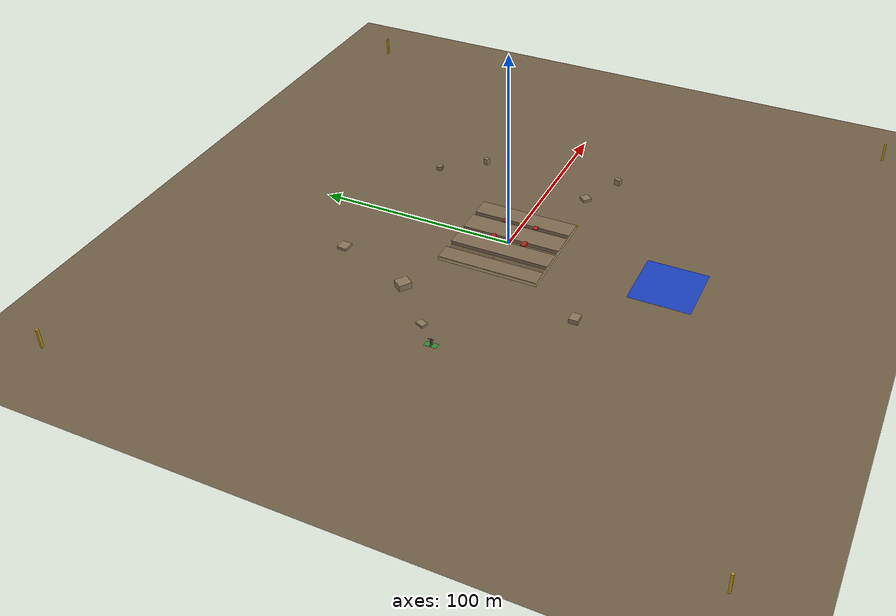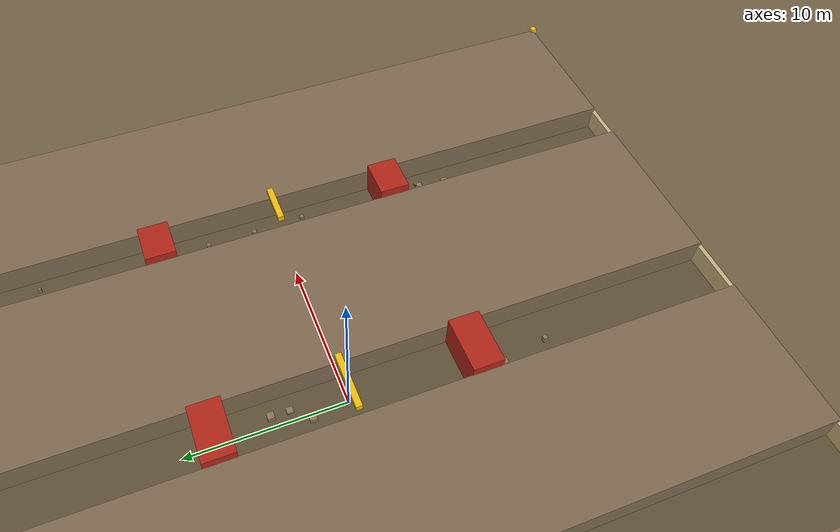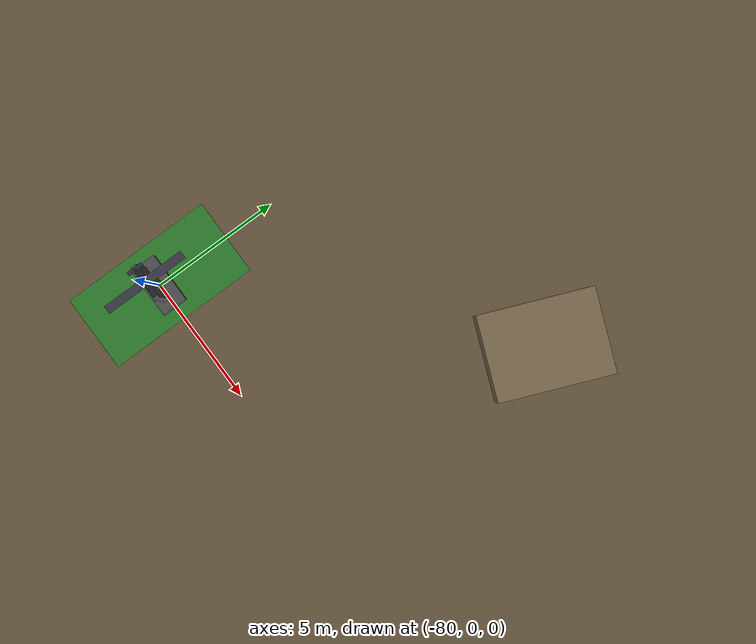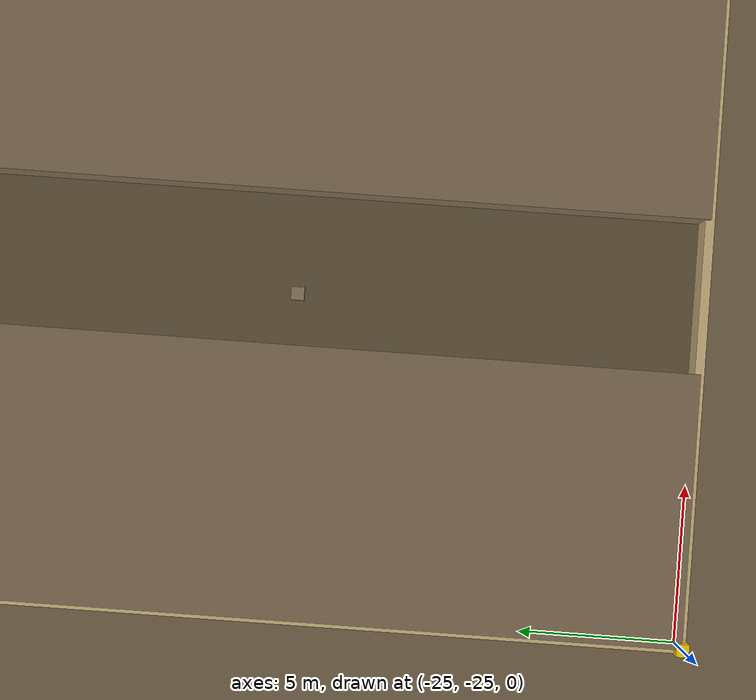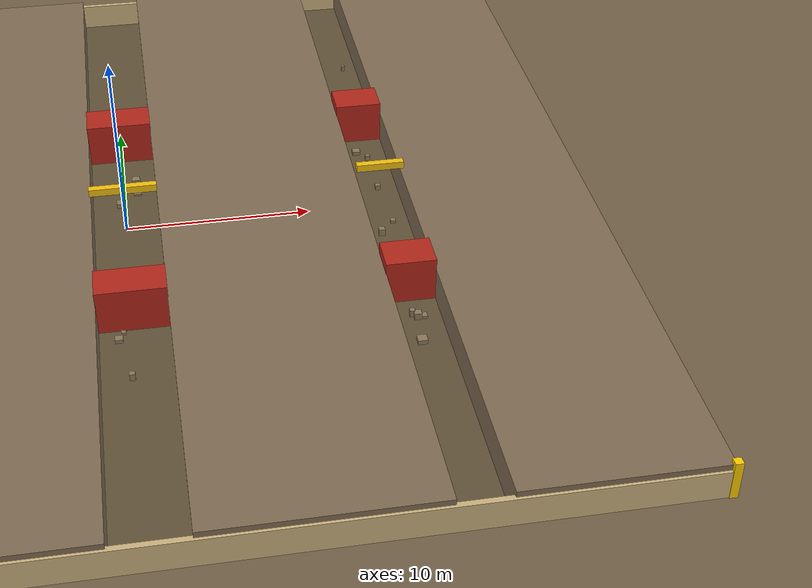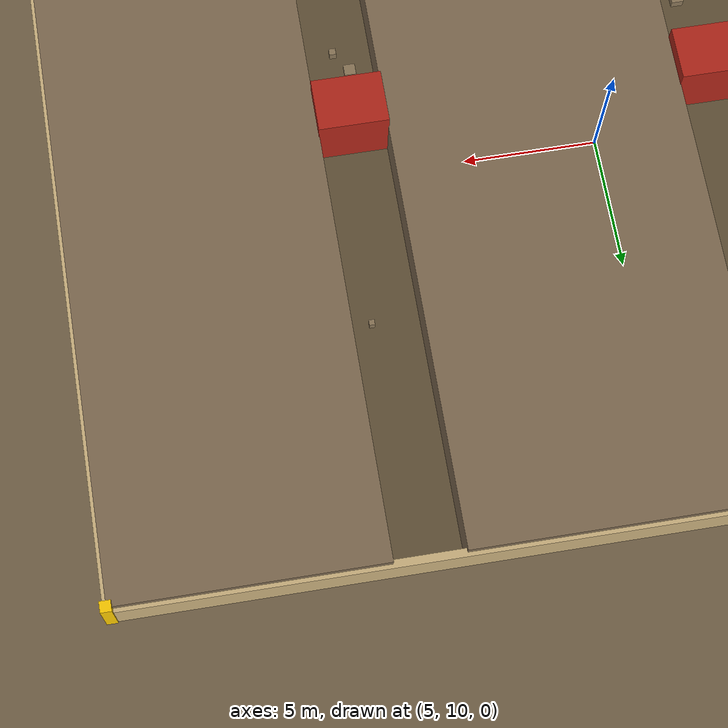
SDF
<?xml version="1.0"?>
<sdf version="1.6">
<world name="navitas_teknofest_2026">

  <physics type="ode">
    <real_time_update_rate>1000</real_time_update_rate>
    <max_step_size>0.001</max_step_size>
  </physics>

  <scene>
    <ambient>0.6 0.6 0.6 1</ambient>
    <background>0.53 0.81 0.98 1</background>
    <shadows>true</shadows>
    <sky>
      <clouds><speed>12</speed></clouds>
    </sky>
  </scene>

  <include>
    <uri>model://sun</uri>
  </include>

  <!-- Zemin düzlemi -->
  <model name="ground_plane">
    <static>true</static>
    <link name="link">
      <collision name="col">
        <geometry><plane><normal>0 0 1</normal><size>500 500</size></plane></geometry>
      </collision>
      <visual name="vis">
        <geometry><plane><normal>0 0 1</normal><size>500 500</size></plane></geometry>
        <material>
          <ambient>0.45 0.38 0.28 1</ambient>
          <diffuse>0.45 0.38 0.28 1</diffuse>
        </material>
      </visual>
    </link>
  </model>

  <!-- Kamera başlangıç konumu (Gazebo GUI) -->
  <gui fullscreen="0">
    <camera name="user_camera">
      <pose>0 -80 60 0 0.8 1.5708</pose>
      <view_controller>orbit</view_controller>
    </camera>
  </gui>

  <!-- === ALAN İŞARETLERİ === -->

  <model name="htab_ground">
    <static>true</static>
    <pose>0.000 0.000 0.002 0 0 0.0000</pose>
    <link name="link">
      <collision name="col">
        <geometry><box><size>50.000 50.000 0.010</size></box></geometry>
      </collision>
      <visual name="vis">
        <cast_shadows>false</cast_shadows>
        <geometry><box><size>50.000 50.000 0.010</size></box></geometry>
        <material>
          <ambient>0.380 0.320 0.220 1.000</ambient>
          <diffuse>0.380 0.320 0.220 1.000</diffuse>
          <specular>0.1 0.1 0.1 1</specular>
        </material>
      </visual>
    </link>
  </model>

  <model name="inis_bolgesi">
    <static>true</static>
    <pose>0.000 -80.000 0.005 0 0 0.0000</pose>
    <link name="link">
      <collision name="col">
        <geometry><box><size>30.000 30.000 0.010</size></box></geometry>
      </collision>
      <visual name="vis">
        <cast_shadows>false</cast_shadows>
        <geometry><box><size>30.000 30.000 0.010</size></box></geometry>
        <material>
          <ambient>0.100 0.250 0.750 1.000</ambient>
          <diffuse>0.100 0.250 0.750 1.000</diffuse>
          <specular>0.1 0.1 0.1 1</specular>
        </material>
      </visual>
    </link>
  </model>

  <model name="hedef_H">
    <static>true</static>
    <pose>18.000 21.000 0.010 0 0 0.0000</pose>
    <link name="link">
      <collision name="col">
        <geometry><box><size>2.000 2.000 0.010</size></box></geometry>
      </collision>
      <visual name="vis">
        <cast_shadows>false</cast_shadows>
        <geometry><box><size>2.000 2.000 0.010</size></box></geometry>
        <material>
          <ambient>0.850 0.080 0.080 1.000</ambient>
          <diffuse>0.850 0.080 0.080 1.000</diffuse>
          <specular>0.1 0.1 0.1 1</specular>
        </material>
      </visual>
    </link>
  </model>

  <model name="h_left">
    <static>true</static>
    <pose>17.450 21.000 0.350 0 0 0.0000</pose>
    <link name="link">
      <collision name="col">
        <geometry><box><size>0.300 2.000 0.700</size></box></geometry>
      </collision>
      <visual name="vis">
        <cast_shadows>true</cast_shadows>
        <geometry><box><size>0.300 2.000 0.700</size></box></geometry>
        <material>
          <ambient>0.850 0.080 0.080 1.000</ambient>
          <diffuse>0.850 0.080 0.080 1.000</diffuse>
          <specular>0.1 0.1 0.1 1</specular>
        </material>
      </visual>
    </link>
  </model>

  <model name="h_right">
    <static>true</static>
    <pose>18.550 21.000 0.350 0 0 0.0000</pose>
    <link name="link">
      <collision name="col">
        <geometry><box><size>0.300 2.000 0.700</size></box></geometry>
      </collision>
      <visual name="vis">
        <cast_shadows>true</cast_shadows>
        <geometry><box><size>0.300 2.000 0.700</size></box></geometry>
        <material>
          <ambient>0.850 0.080 0.080 1.000</ambient>
          <diffuse>0.850 0.080 0.080 1.000</diffuse>
          <specular>0.1 0.1 0.1 1</specular>
        </material>
      </visual>
    </link>
  </model>

  <model name="h_center">
    <static>true</static>
    <pose>18.000 21.000 0.350 0 0 0.0000</pose>
    <link name="link">
      <collision name="col">
        <geometry><box><size>0.800 0.300 0.700</size></box></geometry>
      </collision>
      <visual name="vis">
        <cast_shadows>true</cast_shadows>
        <geometry><box><size>0.800 0.300 0.700</size></box></geometry>
        <material>
          <ambient>0.850 0.080 0.080 1.000</ambient>
          <diffuse>0.850 0.080 0.080 1.000</diffuse>
          <specular>0.1 0.1 0.1 1</specular>
        </material>
      </visual>
    </link>
  </model>

  <model name="ika_kb">
    <static>true</static>
    <pose>-22.000 -22.000 0.010 0 0 0.0000</pose>
    <link name="link">
      <collision name="col">
        <geometry><box><size>1.000 1.000 0.010</size></box></geometry>
      </collision>
      <visual name="vis">
        <cast_shadows>false</cast_shadows>
        <geometry><box><size>1.000 1.000 0.010</size></box></geometry>
        <material>
          <ambient>0.900 0.800 0.100 1.000</ambient>
          <diffuse>0.900 0.800 0.100 1.000</diffuse>
          <specular>0.1 0.1 0.1 1</specular>
        </material>
      </visual>
    </link>
  </model>

  <model name="launch_marker">
    <static>true</static>
    <pose>-80.000 0.000 0.005 0 0 0.0000</pose>
    <link name="link">
      <collision name="col">
        <geometry><box><size>3.000 6.000 0.010</size></box></geometry>
      </collision>
      <visual name="vis">
        <cast_shadows>false</cast_shadows>
        <geometry><box><size>3.000 6.000 0.010</size></box></geometry>
        <material>
          <ambient>0.200 0.550 0.200 1.000</ambient>
          <diffuse>0.200 0.550 0.200 1.000</diffuse>
          <specular>0.1 0.1 0.1 1</specular>
        </material>
      </visual>
    </link>
  </model>

  <model name="launch_post">
    <static>true</static>
    <pose>-80.000 0.000 1.500 0 0 0.0000</pose>
    <link name="link">
      <collision name="col">
        <geometry><box><size>0.300 0.300 3.000</size></box></geometry>
      </collision>
      <visual name="vis">
        <cast_shadows>true</cast_shadows>
        <geometry><box><size>0.300 0.300 3.000</size></box></geometry>
        <material>
          <ambient>0.200 0.550 0.200 1.000</ambient>
          <diffuse>0.200 0.550 0.200 1.000</diffuse>
          <specular>0.1 0.1 0.1 1</specular>
        </material>
      </visual>
    </link>
  </model>

  <model name="ub_corner_-150_-150">
    <static>true</static>
    <pose>-150.000 -150.000 5.000 0 0 0.0000</pose>
    <link name="link">
      <collision name="col">
        <geometry><box><size>1.000 1.000 10.000</size></box></geometry>
      </collision>
      <visual name="vis">
        <cast_shadows>true</cast_shadows>
        <geometry><box><size>1.000 1.000 10.000</size></box></geometry>
        <material>
          <ambient>0.850 0.650 0.100 1.000</ambient>
          <diffuse>0.850 0.650 0.100 1.000</diffuse>
          <specular>0.1 0.1 0.1 1</specular>
        </material>
      </visual>
    </link>
  </model>

  <model name="ub_corner_150_-150">
    <static>true</static>
    <pose>150.000 -150.000 5.000 0 0 0.0000</pose>
    <link name="link">
      <collision name="col">
        <geometry><box><size>1.000 1.000 10.000</size></box></geometry>
      </collision>
      <visual name="vis">
        <cast_shadows>true</cast_shadows>
        <geometry><box><size>1.000 1.000 10.000</size></box></geometry>
        <material>
          <ambient>0.850 0.650 0.100 1.000</ambient>
          <diffuse>0.850 0.650 0.100 1.000</diffuse>
          <specular>0.1 0.1 0.1 1</specular>
        </material>
      </visual>
    </link>
  </model>

  <model name="ub_corner_150_150">
    <static>true</static>
    <pose>150.000 150.000 5.000 0 0 0.0000</pose>
    <link name="link">
      <collision name="col">
        <geometry><box><size>1.000 1.000 10.000</size></box></geometry>
      </collision>
      <visual name="vis">
        <cast_shadows>true</cast_shadows>
        <geometry><box><size>1.000 1.000 10.000</size></box></geometry>
        <material>
          <ambient>0.850 0.650 0.100 1.000</ambient>
          <diffuse>0.850 0.650 0.100 1.000</diffuse>
          <specular>0.1 0.1 0.1 1</specular>
        </material>
      </visual>
    </link>
  </model>

  <model name="ub_corner_-150_150">
    <static>true</static>
    <pose>-150.000 150.000 5.000 0 0 0.0000</pose>
    <link name="link">
      <collision name="col">
        <geometry><box><size>1.000 1.000 10.000</size></box></geometry>
      </collision>
      <visual name="vis">
        <cast_shadows>true</cast_shadows>
        <geometry><box><size>1.000 1.000 10.000</size></box></geometry>
        <material>
          <ambient>0.850 0.650 0.100 1.000</ambient>
          <diffuse>0.850 0.650 0.100 1.000</diffuse>
          <specular>0.1 0.1 0.1 1</specular>
        </material>
      </visual>
    </link>
  </model>

  <model name="htab_corner_-25_-25">
    <static>true</static>
    <pose>-25.000 -25.000 1.000 0 0 0.0000</pose>
    <link name="link">
      <collision name="col">
        <geometry><box><size>0.400 0.400 2.000</size></box></geometry>
      </collision>
      <visual name="vis">
        <cast_shadows>true</cast_shadows>
        <geometry><box><size>0.400 0.400 2.000</size></box></geometry>
        <material>
          <ambient>1.000 0.800 0.000 1.000</ambient>
          <diffuse>1.000 0.800 0.000 1.000</diffuse>
          <specular>0.1 0.1 0.1 1</specular>
        </material>
      </visual>
    </link>
  </model>

  <model name="htab_corner_25_-25">
    <static>true</static>
    <pose>25.000 -25.000 1.000 0 0 0.0000</pose>
    <link name="link">
      <collision name="col">
        <geometry><box><size>0.400 0.400 2.000</size></box></geometry>
      </collision>
      <visual name="vis">
        <cast_shadows>true</cast_shadows>
        <geometry><box><size>0.400 0.400 2.000</size></box></geometry>
        <material>
          <ambient>1.000 0.800 0.000 1.000</ambient>
          <diffuse>1.000 0.800 0.000 1.000</diffuse>
          <specular>0.1 0.1 0.1 1</specular>
        </material>
      </visual>
    </link>
  </model>

  <model name="htab_corner_25_25">
    <static>true</static>
    <pose>25.000 25.000 1.000 0 0 0.0000</pose>
    <link name="link">
      <collision name="col">
        <geometry><box><size>0.400 0.400 2.000</size></box></geometry>
      </collision>
      <visual name="vis">
        <cast_shadows>true</cast_shadows>
        <geometry><box><size>0.400 0.400 2.000</size></box></geometry>
        <material>
          <ambient>1.000 0.800 0.000 1.000</ambient>
          <diffuse>1.000 0.800 0.000 1.000</diffuse>
          <specular>0.1 0.1 0.1 1</specular>
        </material>
      </visual>
    </link>
  </model>

  <model name="htab_corner_-25_25">
    <static>true</static>
    <pose>-25.000 25.000 1.000 0 0 0.0000</pose>
    <link name="link">
      <collision name="col">
        <geometry><box><size>0.400 0.400 2.000</size></box></geometry>
      </collision>
      <visual name="vis">
        <cast_shadows>true</cast_shadows>
        <geometry><box><size>0.400 0.400 2.000</size></box></geometry>
        <material>
          <ambient>1.000 0.800 0.000 1.000</ambient>
          <diffuse>1.000 0.800 0.000 1.000</diffuse>
          <specular>0.1 0.1 0.1 1</specular>
        </material>
      </visual>
    </link>
  </model>
  <!-- === KORİDOR YAPISI === -->

  <model name="wall_west_fill">
    <static>true</static>
    <pose>-20.712 0.000 0.900 0 0 0.0000</pose>
    <link name="link">
      <collision name="col">
        <geometry><box><size>8.575 50.000 1.800</size></box></geometry>
      </collision>
      <visual name="vis">
        <cast_shadows>true</cast_shadows>
        <geometry><box><size>8.575 50.000 1.800</size></box></geometry>
        <material>
          <ambient>0.500 0.420 0.320 1.000</ambient>
          <diffuse>0.500 0.420 0.320 1.000</diffuse>
          <specular>0.1 0.1 0.1 1</specular>
        </material>
      </visual>
    </link>
  </model>

  <model name="wall_kolay_orta">
    <static>true</static>
    <pose>-6.675 0.000 0.900 0 0 0.0000</pose>
    <link name="link">
      <collision name="col">
        <geometry><box><size>9.800 50.000 1.800</size></box></geometry>
      </collision>
      <visual name="vis">
        <cast_shadows>true</cast_shadows>
        <geometry><box><size>9.800 50.000 1.800</size></box></geometry>
        <material>
          <ambient>0.500 0.420 0.320 1.000</ambient>
          <diffuse>0.500 0.420 0.320 1.000</diffuse>
          <specular>0.1 0.1 0.1 1</specular>
        </material>
      </visual>
    </link>
  </model>

  <model name="wall_orta_zor">
    <static>true</static>
    <pose>7.250 0.000 0.900 0 0 0.0000</pose>
    <link name="link">
      <collision name="col">
        <geometry><box><size>10.950 50.000 1.800</size></box></geometry>
      </collision>
      <visual name="vis">
        <cast_shadows>true</cast_shadows>
        <geometry><box><size>10.950 50.000 1.800</size></box></geometry>
        <material>
          <ambient>0.500 0.420 0.320 1.000</ambient>
          <diffuse>0.500 0.420 0.320 1.000</diffuse>
          <specular>0.1 0.1 0.1 1</specular>
        </material>
      </visual>
    </link>
  </model>

  <model name="wall_east_fill">
    <static>true</static>
    <pose>20.137 0.000 0.900 0 0 0.0000</pose>
    <link name="link">
      <collision name="col">
        <geometry><box><size>9.725 50.000 1.800</size></box></geometry>
      </collision>
      <visual name="vis">
        <cast_shadows>true</cast_shadows>
        <geometry><box><size>9.725 50.000 1.800</size></box></geometry>
        <material>
          <ambient>0.500 0.420 0.320 1.000</ambient>
          <diffuse>0.500 0.420 0.320 1.000</diffuse>
          <specular>0.1 0.1 0.1 1</specular>
        </material>
      </visual>
    </link>
  </model>

  <model name="htab_north">
    <static>true</static>
    <pose>0.000 25.000 0.750 0 0 0.0000</pose>
    <link name="link">
      <collision name="col">
        <geometry><box><size>50.000 0.300 1.500</size></box></geometry>
      </collision>
      <visual name="vis">
        <cast_shadows>true</cast_shadows>
        <geometry><box><size>50.000 0.300 1.500</size></box></geometry>
        <material>
          <ambient>0.800 0.700 0.500 1.000</ambient>
          <diffuse>0.800 0.700 0.500 1.000</diffuse>
          <specular>0.1 0.1 0.1 1</specular>
        </material>
      </visual>
    </link>
  </model>

  <model name="htab_south">
    <static>true</static>
    <pose>0.000 -25.000 0.750 0 0 0.0000</pose>
    <link name="link">
      <collision name="col">
        <geometry><box><size>50.000 0.300 1.500</size></box></geometry>
      </collision>
      <visual name="vis">
        <cast_shadows>true</cast_shadows>
        <geometry><box><size>50.000 0.300 1.500</size></box></geometry>
        <material>
          <ambient>0.800 0.700 0.500 1.000</ambient>
          <diffuse>0.800 0.700 0.500 1.000</diffuse>
          <specular>0.1 0.1 0.1 1</specular>
        </material>
      </visual>
    </link>
  </model>

  <model name="htab_east">
    <static>true</static>
    <pose>25.000 0.000 0.750 0 0 0.0000</pose>
    <link name="link">
      <collision name="col">
        <geometry><box><size>0.300 50.000 1.500</size></box></geometry>
      </collision>
      <visual name="vis">
        <cast_shadows>true</cast_shadows>
        <geometry><box><size>0.300 50.000 1.500</size></box></geometry>
        <material>
          <ambient>0.800 0.700 0.500 1.000</ambient>
          <diffuse>0.800 0.700 0.500 1.000</diffuse>
          <specular>0.1 0.1 0.1 1</specular>
        </material>
      </visual>
    </link>
  </model>

  <model name="htab_west">
    <static>true</static>
    <pose>-25.000 0.000 0.750 0 0 0.0000</pose>
    <link name="link">
      <collision name="col">
        <geometry><box><size>0.300 50.000 1.500</size></box></geometry>
      </collision>
      <visual name="vis">
        <cast_shadows>true</cast_shadows>
        <geometry><box><size>0.300 50.000 1.500</size></box></geometry>
        <material>
          <ambient>0.800 0.700 0.500 1.000</ambient>
          <diffuse>0.800 0.700 0.500 1.000</diffuse>
          <specular>0.1 0.1 0.1 1</specular>
        </material>
      </visual>
    </link>
  </model>
  <!-- === KAPALI YOL BARİYERLERİ (açık: KOLAY) === -->

  <model name="barrier_orta_north">
    <static>true</static>
    <pose>0.000 8.000 1.200 0 0 0.0000</pose>
    <link name="link">
      <collision name="col">
        <geometry><box><size>3.600 2.000 2.400</size></box></geometry>
      </collision>
      <visual name="vis">
        <cast_shadows>true</cast_shadows>
        <geometry><box><size>3.600 2.000 2.400</size></box></geometry>
        <material>
          <ambient>0.700 0.150 0.100 1.000</ambient>
          <diffuse>0.700 0.150 0.100 1.000</diffuse>
          <specular>0.1 0.1 0.1 1</specular>
        </material>
      </visual>
    </link>
  </model>

  <model name="barrier_orta_south">
    <static>true</static>
    <pose>0.000 -8.000 1.200 0 0 0.0000</pose>
    <link name="link">
      <collision name="col">
        <geometry><box><size>3.600 2.000 2.400</size></box></geometry>
      </collision>
      <visual name="vis">
        <cast_shadows>true</cast_shadows>
        <geometry><box><size>3.600 2.000 2.400</size></box></geometry>
        <material>
          <ambient>0.700 0.150 0.100 1.000</ambient>
          <diffuse>0.700 0.150 0.100 1.000</diffuse>
          <specular>0.1 0.1 0.1 1</specular>
        </material>
      </visual>
    </link>
  </model>

  <model name="barrier_orta_sign">
    <static>true</static>
    <pose>0.000 0.000 2.600 0 0 0.0000</pose>
    <link name="link">
      <collision name="col">
        <geometry><box><size>3.600 0.400 0.400</size></box></geometry>
      </collision>
      <visual name="vis">
        <cast_shadows>true</cast_shadows>
        <geometry><box><size>3.600 0.400 0.400</size></box></geometry>
        <material>
          <ambient>0.950 0.750 0.050 1.000</ambient>
          <diffuse>0.950 0.750 0.050 1.000</diffuse>
          <specular>0.1 0.1 0.1 1</specular>
        </material>
      </visual>
    </link>
  </model>

  <model name="barrier_zor_north">
    <static>true</static>
    <pose>14.000 8.000 1.200 0 0 0.0000</pose>
    <link name="link">
      <collision name="col">
        <geometry><box><size>2.600 2.000 2.400</size></box></geometry>
      </collision>
      <visual name="vis">
        <cast_shadows>true</cast_shadows>
        <geometry><box><size>2.600 2.000 2.400</size></box></geometry>
        <material>
          <ambient>0.700 0.150 0.100 1.000</ambient>
          <diffuse>0.700 0.150 0.100 1.000</diffuse>
          <specular>0.1 0.1 0.1 1</specular>
        </material>
      </visual>
    </link>
  </model>

  <model name="barrier_zor_south">
    <static>true</static>
    <pose>14.000 -8.000 1.200 0 0 0.0000</pose>
    <link name="link">
      <collision name="col">
        <geometry><box><size>2.600 2.000 2.400</size></box></geometry>
      </collision>
      <visual name="vis">
        <cast_shadows>true</cast_shadows>
        <geometry><box><size>2.600 2.000 2.400</size></box></geometry>
        <material>
          <ambient>0.700 0.150 0.100 1.000</ambient>
          <diffuse>0.700 0.150 0.100 1.000</diffuse>
          <specular>0.1 0.1 0.1 1</specular>
        </material>
      </visual>
    </link>
  </model>

  <model name="barrier_zor_sign">
    <static>true</static>
    <pose>14.000 0.000 2.600 0 0 0.0000</pose>
    <link name="link">
      <collision name="col">
        <geometry><box><size>2.600 0.400 0.400</size></box></geometry>
      </collision>
      <visual name="vis">
        <cast_shadows>true</cast_shadows>
        <geometry><box><size>2.600 0.400 0.400</size></box></geometry>
        <material>
          <ambient>0.950 0.750 0.050 1.000</ambient>
          <diffuse>0.950 0.750 0.050 1.000</diffuse>
          <specular>0.1 0.1 0.1 1</specular>
        </material>
      </visual>
    </link>
  </model>
  <!-- === KORİDOR İÇİ KÜÇÜK ENGELLER === -->

  <model name="cor_debris_kolay_1">
    <static>true</static>
    <pose>-14.742 -12.179 0.152 0 0 0.0000</pose>
    <link name="link">
      <collision name="col">
        <geometry><box><size>0.421 0.421 0.303</size></box></geometry>
      </collision>
      <visual name="vis">
        <cast_shadows>true</cast_shadows>
        <geometry><box><size>0.421 0.421 0.303</size></box></geometry>
        <material>
          <ambient>0.550 0.470 0.350 1.000</ambient>
          <diffuse>0.550 0.470 0.350 1.000</diffuse>
          <specular>0.1 0.1 0.1 1</specular>
        </material>
      </visual>
    </link>
  </model>

  <model name="cor_debris_kolay_4">
    <static>true</static>
    <pose>-14.928 0.236 0.080 0 0 0.0000</pose>
    <link name="link">
      <collision name="col">
        <geometry><box><size>0.208 0.208 0.160</size></box></geometry>
      </collision>
      <visual name="vis">
        <cast_shadows>true</cast_shadows>
        <geometry><box><size>0.208 0.208 0.160</size></box></geometry>
        <material>
          <ambient>0.550 0.470 0.350 1.000</ambient>
          <diffuse>0.550 0.470 0.350 1.000</diffuse>
          <specular>0.1 0.1 0.1 1</specular>
        </material>
      </visual>
    </link>
  </model>

  <model name="cor_debris_kolay_5">
    <static>true</static>
    <pose>-13.505 1.977 0.138 0 0 0.0000</pose>
    <link name="link">
      <collision name="col">
        <geometry><box><size>0.266 0.266 0.277</size></box></geometry>
      </collision>
      <visual name="vis">
        <cast_shadows>true</cast_shadows>
        <geometry><box><size>0.266 0.266 0.277</size></box></geometry>
        <material>
          <ambient>0.550 0.470 0.350 1.000</ambient>
          <diffuse>0.550 0.470 0.350 1.000</diffuse>
          <specular>0.1 0.1 0.1 1</specular>
        </material>
      </visual>
    </link>
  </model>

  <model name="cor_debris_orta_1">
    <static>true</static>
    <pose>0.612 8.718 0.073 0 0 0.0000</pose>
    <link name="link">
      <collision name="col">
        <geometry><box><size>0.302 0.302 0.147</size></box></geometry>
      </collision>
      <visual name="vis">
        <cast_shadows>true</cast_shadows>
        <geometry><box><size>0.302 0.302 0.147</size></box></geometry>
        <material>
          <ambient>0.550 0.470 0.350 1.000</ambient>
          <diffuse>0.550 0.470 0.350 1.000</diffuse>
          <specular>0.1 0.1 0.1 1</specular>
        </material>
      </visual>
    </link>
  </model>

  <model name="cor_debris_orta_2">
    <static>true</static>
    <pose>0.914 -7.190 0.065 0 0 0.0000</pose>
    <link name="link">
      <collision name="col">
        <geometry><box><size>0.228 0.228 0.129</size></box></geometry>
      </collision>
      <visual name="vis">
        <cast_shadows>true</cast_shadows>
        <geometry><box><size>0.228 0.228 0.129</size></box></geometry>
        <material>
          <ambient>0.550 0.470 0.350 1.000</ambient>
          <diffuse>0.550 0.470 0.350 1.000</diffuse>
          <specular>0.1 0.1 0.1 1</specular>
        </material>
      </visual>
    </link>
  </model>

  <model name="cor_debris_orta_3">
    <static>true</static>
    <pose>0.695 4.564 0.159 0 0 0.0000</pose>
    <link name="link">
      <collision name="col">
        <geometry><box><size>0.442 0.442 0.319</size></box></geometry>
      </collision>
      <visual name="vis">
        <cast_shadows>true</cast_shadows>
        <geometry><box><size>0.442 0.442 0.319</size></box></geometry>
        <material>
          <ambient>0.550 0.470 0.350 1.000</ambient>
          <diffuse>0.550 0.470 0.350 1.000</diffuse>
          <specular>0.1 0.1 0.1 1</specular>
        </material>
      </visual>
    </link>
  </model>

  <model name="cor_debris_orta_5">
    <static>true</static>
    <pose>-0.243 2.290 0.143 0 0 0.0000</pose>
    <link name="link">
      <collision name="col">
        <geometry><box><size>0.449 0.449 0.286</size></box></geometry>
      </collision>
      <visual name="vis">
        <cast_shadows>true</cast_shadows>
        <geometry><box><size>0.449 0.449 0.286</size></box></geometry>
        <material>
          <ambient>0.550 0.470 0.350 1.000</ambient>
          <diffuse>0.550 0.470 0.350 1.000</diffuse>
          <specular>0.1 0.1 0.1 1</specular>
        </material>
      </visual>
    </link>
  </model>

  <model name="cor_debris_orta_6">
    <static>true</static>
    <pose>0.723 3.403 0.057 0 0 0.0000</pose>
    <link name="link">
      <collision name="col">
        <geometry><box><size>0.411 0.411 0.114</size></box></geometry>
      </collision>
      <visual name="vis">
        <cast_shadows>true</cast_shadows>
        <geometry><box><size>0.411 0.411 0.114</size></box></geometry>
        <material>
          <ambient>0.550 0.470 0.350 1.000</ambient>
          <diffuse>0.550 0.470 0.350 1.000</diffuse>
          <specular>0.1 0.1 0.1 1</specular>
        </material>
      </visual>
    </link>
  </model>

  <model name="cor_debris_orta_7">
    <static>true</static>
    <pose>-0.544 -9.267 0.085 0 0 0.0000</pose>
    <link name="link">
      <collision name="col">
        <geometry><box><size>0.224 0.224 0.170</size></box></geometry>
      </collision>
      <visual name="vis">
        <cast_shadows>true</cast_shadows>
        <geometry><box><size>0.224 0.224 0.170</size></box></geometry>
        <material>
          <ambient>0.550 0.470 0.350 1.000</ambient>
          <diffuse>0.550 0.470 0.350 1.000</diffuse>
          <specular>0.1 0.1 0.1 1</specular>
        </material>
      </visual>
    </link>
  </model>

  <model name="cor_debris_orta_8">
    <static>true</static>
    <pose>-0.798 -9.769 0.105 0 0 0.0000</pose>
    <link name="link">
      <collision name="col">
        <geometry><box><size>0.391 0.391 0.209</size></box></geometry>
      </collision>
      <visual name="vis">
        <cast_shadows>true</cast_shadows>
        <geometry><box><size>0.391 0.391 0.209</size></box></geometry>
        <material>
          <ambient>0.550 0.470 0.350 1.000</ambient>
          <diffuse>0.550 0.470 0.350 1.000</diffuse>
          <specular>0.1 0.1 0.1 1</specular>
        </material>
      </visual>
    </link>
  </model>

  <model name="cor_debris_orta_9">
    <static>true</static>
    <pose>-0.260 -12.782 0.190 0 0 0.0000</pose>
    <link name="link">
      <collision name="col">
        <geometry><box><size>0.280 0.280 0.381</size></box></geometry>
      </collision>
      <visual name="vis">
        <cast_shadows>true</cast_shadows>
        <geometry><box><size>0.280 0.280 0.381</size></box></geometry>
        <material>
          <ambient>0.550 0.470 0.350 1.000</ambient>
          <diffuse>0.550 0.470 0.350 1.000</diffuse>
          <specular>0.1 0.1 0.1 1</specular>
        </material>
      </visual>
    </link>
  </model>

  <model name="cor_debris_zor_0">
    <static>true</static>
    <pose>14.148 4.802 0.159 0 0 0.0000</pose>
    <link name="link">
      <collision name="col">
        <geometry><box><size>0.251 0.251 0.319</size></box></geometry>
      </collision>
      <visual name="vis">
        <cast_shadows>true</cast_shadows>
        <geometry><box><size>0.251 0.251 0.319</size></box></geometry>
        <material>
          <ambient>0.550 0.470 0.350 1.000</ambient>
          <diffuse>0.550 0.470 0.350 1.000</diffuse>
          <specular>0.1 0.1 0.1 1</specular>
        </material>
      </visual>
    </link>
  </model>

  <model name="cor_debris_zor_1">
    <static>true</static>
    <pose>13.663 -5.304 0.146 0 0 0.0000</pose>
    <link name="link">
      <collision name="col">
        <geometry><box><size>0.497 0.497 0.292</size></box></geometry>
      </collision>
      <visual name="vis">
        <cast_shadows>true</cast_shadows>
        <geometry><box><size>0.497 0.497 0.292</size></box></geometry>
        <material>
          <ambient>0.550 0.470 0.350 1.000</ambient>
          <diffuse>0.550 0.470 0.350 1.000</diffuse>
          <specular>0.1 0.1 0.1 1</specular>
        </material>
      </visual>
    </link>
  </model>

  <model name="cor_debris_zor_2">
    <static>true</static>
    <pose>14.057 8.123 0.166 0 0 0.0000</pose>
    <link name="link">
      <collision name="col">
        <geometry><box><size>0.453 0.453 0.333</size></box></geometry>
      </collision>
      <visual name="vis">
        <cast_shadows>true</cast_shadows>
        <geometry><box><size>0.453 0.453 0.333</size></box></geometry>
        <material>
          <ambient>0.550 0.470 0.350 1.000</ambient>
          <diffuse>0.550 0.470 0.350 1.000</diffuse>
          <specular>0.1 0.1 0.1 1</specular>
        </material>
      </visual>
    </link>
  </model>

  <model name="cor_debris_zor_4">
    <static>true</static>
    <pose>13.815 -10.219 0.191 0 0 0.0000</pose>
    <link name="link">
      <collision name="col">
        <geometry><box><size>0.263 0.263 0.383</size></box></geometry>
      </collision>
      <visual name="vis">
        <cast_shadows>true</cast_shadows>
        <geometry><box><size>0.263 0.263 0.383</size></box></geometry>
        <material>
          <ambient>0.550 0.470 0.350 1.000</ambient>
          <diffuse>0.550 0.470 0.350 1.000</diffuse>
          <specular>0.1 0.1 0.1 1</specular>
        </material>
      </visual>
    </link>
  </model>

  <model name="cor_debris_zor_5">
    <static>true</static>
    <pose>14.376 -8.154 0.109 0 0 0.0000</pose>
    <link name="link">
      <collision name="col">
        <geometry><box><size>0.397 0.397 0.219</size></box></geometry>
      </collision>
      <visual name="vis">
        <cast_shadows>true</cast_shadows>
        <geometry><box><size>0.397 0.397 0.219</size></box></geometry>
        <material>
          <ambient>0.550 0.470 0.350 1.000</ambient>
          <diffuse>0.550 0.470 0.350 1.000</diffuse>
          <specular>0.1 0.1 0.1 1</specular>
        </material>
      </visual>
    </link>
  </model>

  <model name="cor_debris_zor_6">
    <static>true</static>
    <pose>14.415 -1.811 0.087 0 0 0.0000</pose>
    <link name="link">
      <collision name="col">
        <geometry><box><size>0.279 0.279 0.174</size></box></geometry>
      </collision>
      <visual name="vis">
        <cast_shadows>true</cast_shadows>
        <geometry><box><size>0.279 0.279 0.174</size></box></geometry>
        <material>
          <ambient>0.550 0.470 0.350 1.000</ambient>
          <diffuse>0.550 0.470 0.350 1.000</diffuse>
          <specular>0.1 0.1 0.1 1</specular>
        </material>
      </visual>
    </link>
  </model>

  <model name="cor_debris_zor_7">
    <static>true</static>
    <pose>14.061 -10.439 0.185 0 0 0.0000</pose>
    <link name="link">
      <collision name="col">
        <geometry><box><size>0.375 0.375 0.369</size></box></geometry>
      </collision>
      <visual name="vis">
        <cast_shadows>true</cast_shadows>
        <geometry><box><size>0.375 0.375 0.369</size></box></geometry>
        <material>
          <ambient>0.550 0.470 0.350 1.000</ambient>
          <diffuse>0.550 0.470 0.350 1.000</diffuse>
          <specular>0.1 0.1 0.1 1</specular>
        </material>
      </visual>
    </link>
  </model>

  <model name="cor_debris_zor_8">
    <static>true</static>
    <pose>13.899 -12.350 0.126 0 0 0.0000</pose>
    <link name="link">
      <collision name="col">
        <geometry><box><size>0.499 0.499 0.253</size></box></geometry>
      </collision>
      <visual name="vis">
        <cast_shadows>true</cast_shadows>
        <geometry><box><size>0.499 0.499 0.253</size></box></geometry>
        <material>
          <ambient>0.550 0.470 0.350 1.000</ambient>
          <diffuse>0.550 0.470 0.350 1.000</diffuse>
          <specular>0.1 0.1 0.1 1</specular>
        </material>
      </visual>
    </link>
  </model>

  <model name="cor_debris_zor_10">
    <static>true</static>
    <pose>13.610 5.608 0.113 0 0 0.0000</pose>
    <link name="link">
      <collision name="col">
        <geometry><box><size>0.438 0.438 0.227</size></box></geometry>
      </collision>
      <visual name="vis">
        <cast_shadows>true</cast_shadows>
        <geometry><box><size>0.438 0.438 0.227</size></box></geometry>
        <material>
          <ambient>0.550 0.470 0.350 1.000</ambient>
          <diffuse>0.550 0.470 0.350 1.000</diffuse>
          <specular>0.1 0.1 0.1 1</specular>
        </material>
      </visual>
    </link>
  </model>

  <model name="cor_debris_zor_11">
    <static>true</static>
    <pose>13.564 -5.209 0.129 0 0 0.0000</pose>
    <link name="link">
      <collision name="col">
        <geometry><box><size>0.499 0.499 0.259</size></box></geometry>
      </collision>
      <visual name="vis">
        <cast_shadows>true</cast_shadows>
        <geometry><box><size>0.499 0.499 0.259</size></box></geometry>
        <material>
          <ambient>0.550 0.470 0.350 1.000</ambient>
          <diffuse>0.550 0.470 0.350 1.000</diffuse>
          <specular>0.1 0.1 0.1 1</specular>
        </material>
      </visual>
    </link>
  </model>

  <model name="cor_debris_zor_12">
    <static>true</static>
    <pose>14.471 15.874 0.158 0 0 0.0000</pose>
    <link name="link">
      <collision name="col">
        <geometry><box><size>0.203 0.203 0.316</size></box></geometry>
      </collision>
      <visual name="vis">
        <cast_shadows>true</cast_shadows>
        <geometry><box><size>0.203 0.203 0.316</size></box></geometry>
        <material>
          <ambient>0.550 0.470 0.350 1.000</ambient>
          <diffuse>0.550 0.470 0.350 1.000</diffuse>
          <specular>0.1 0.1 0.1 1</specular>
        </material>
      </visual>
    </link>
  </model>

  <model name="cor_debris_zor_13">
    <static>true</static>
    <pose>14.182 1.627 0.146 0 0 0.0000</pose>
    <link name="link">
      <collision name="col">
        <geometry><box><size>0.280 0.280 0.292</size></box></geometry>
      </collision>
      <visual name="vis">
        <cast_shadows>true</cast_shadows>
        <geometry><box><size>0.280 0.280 0.292</size></box></geometry>
        <material>
          <ambient>0.550 0.470 0.350 1.000</ambient>
          <diffuse>0.550 0.470 0.350 1.000</diffuse>
          <specular>0.1 0.1 0.1 1</specular>
        </material>
      </visual>
    </link>
  </model>

  <model name="cor_debris_zor_14">
    <static>true</static>
    <pose>13.612 -2.870 0.193 0 0 0.0000</pose>
    <link name="link">
      <collision name="col">
        <geometry><box><size>0.336 0.336 0.386</size></box></geometry>
      </collision>
      <visual name="vis">
        <cast_shadows>true</cast_shadows>
        <geometry><box><size>0.336 0.336 0.386</size></box></geometry>
        <material>
          <ambient>0.550 0.470 0.350 1.000</ambient>
          <diffuse>0.550 0.470 0.350 1.000</diffuse>
          <specular>0.1 0.1 0.1 1</specular>
        </material>
      </visual>
    </link>
  </model>

  <model name="cor_debris_zor_15">
    <static>true</static>
    <pose>14.376 -10.411 0.077 0 0 0.0000</pose>
    <link name="link">
      <collision name="col">
        <geometry><box><size>0.350 0.350 0.154</size></box></geometry>
      </collision>
      <visual name="vis">
        <cast_shadows>true</cast_shadows>
        <geometry><box><size>0.350 0.350 0.154</size></box></geometry>
        <material>
          <ambient>0.550 0.470 0.350 1.000</ambient>
          <diffuse>0.550 0.470 0.350 1.000</diffuse>
          <specular>0.1 0.1 0.1 1</specular>
        </material>
      </visual>
    </link>
  </model>
  <!-- === DIŞ MOLOZ (görsel) === -->

  <model name="outer_debris_0">
    <static>true</static>
    <pose>-50.000 30.000 1.588 0 0 0.9371</pose>
    <link name="link">
      <collision name="col">
        <geometry><box><size>5.651 6.279 3.176</size></box></geometry>
      </collision>
      <visual name="vis">
        <cast_shadows>true</cast_shadows>
        <geometry><box><size>5.651 6.279 3.176</size></box></geometry>
        <material>
          <ambient>0.550 0.470 0.350 1.000</ambient>
          <diffuse>0.550 0.470 0.350 1.000</diffuse>
          <specular>0.1 0.1 0.1 1</specular>
        </material>
      </visual>
    </link>
  </model>

  <model name="outer_debris_1">
    <static>true</static>
    <pose>50.000 -20.000 0.691 0 0 2.3943</pose>
    <link name="link">
      <collision name="col">
        <geometry><box><size>4.436 4.576 1.382</size></box></geometry>
      </collision>
      <visual name="vis">
        <cast_shadows>true</cast_shadows>
        <geometry><box><size>4.436 4.576 1.382</size></box></geometry>
        <material>
          <ambient>0.550 0.470 0.350 1.000</ambient>
          <diffuse>0.550 0.470 0.350 1.000</diffuse>
          <specular>0.1 0.1 0.1 1</specular>
        </material>
      </visual>
    </link>
  </model>

  <model name="outer_debris_2">
    <static>true</static>
    <pose>-40.000 -50.000 1.163 0 0 0.0018</pose>
    <link name="link">
      <collision name="col">
        <geometry><box><size>5.115 4.395 2.326</size></box></geometry>
      </collision>
      <visual name="vis">
        <cast_shadows>true</cast_shadows>
        <geometry><box><size>5.115 4.395 2.326</size></box></geometry>
        <material>
          <ambient>0.550 0.470 0.350 1.000</ambient>
          <diffuse>0.550 0.470 0.350 1.000</diffuse>
          <specular>0.1 0.1 0.1 1</specular>
        </material>
      </visual>
    </link>
  </model>

  <model name="outer_debris_3">
    <static>true</static>
    <pose>60.000 40.000 1.661 0 0 2.7592</pose>
    <link name="link">
      <collision name="col">
        <geometry><box><size>2.078 2.629 3.323</size></box></geometry>
      </collision>
      <visual name="vis">
        <cast_shadows>true</cast_shadows>
        <geometry><box><size>2.078 2.629 3.323</size></box></geometry>
        <material>
          <ambient>0.550 0.470 0.350 1.000</ambient>
          <diffuse>0.550 0.470 0.350 1.000</diffuse>
          <specular>0.1 0.1 0.1 1</specular>
        </material>
      </visual>
    </link>
  </model>

  <model name="outer_debris_4">
    <static>true</static>
    <pose>-70.000 10.000 0.572 0 0 2.7570</pose>
    <link name="link">
      <collision name="col">
        <geometry><box><size>3.230 4.385 1.145</size></box></geometry>
      </collision>
      <visual name="vis">
        <cast_shadows>true</cast_shadows>
        <geometry><box><size>3.230 4.385 1.145</size></box></geometry>
        <material>
          <ambient>0.550 0.470 0.350 1.000</ambient>
          <diffuse>0.550 0.470 0.350 1.000</diffuse>
          <specular>0.1 0.1 0.1 1</specular>
        </material>
      </visual>
    </link>
  </model>

  <model name="outer_debris_5">
    <static>true</static>
    <pose>45.000 60.000 1.107 0 0 0.2173</pose>
    <link name="link">
      <collision name="col">
        <geometry><box><size>2.343 2.831 2.215</size></box></geometry>
      </collision>
      <visual name="vis">
        <cast_shadows>true</cast_shadows>
        <geometry><box><size>2.343 2.831 2.215</size></box></geometry>
        <material>
          <ambient>0.550 0.470 0.350 1.000</ambient>
          <diffuse>0.550 0.470 0.350 1.000</diffuse>
          <specular>0.1 0.1 0.1 1</specular>
        </material>
      </visual>
    </link>
  </model>

  <model name="outer_debris_6">
    <static>true</static>
    <pose>-35.000 70.000 0.660 0 0 1.4924</pose>
    <link name="link">
      <collision name="col">
        <geometry><box><size>5.063 5.265 1.321</size></box></geometry>
      </collision>
      <visual name="vis">
        <cast_shadows>true</cast_shadows>
        <geometry><box><size>5.063 5.265 1.321</size></box></geometry>
        <material>
          <ambient>0.550 0.470 0.350 1.000</ambient>
          <diffuse>0.550 0.470 0.350 1.000</diffuse>
          <specular>0.1 0.1 0.1 1</specular>
        </material>
      </visual>
    </link>
  </model>

  <model name="outer_debris_7">
    <static>true</static>
    <pose>70.000 -30.000 1.591 0 0 1.3287</pose>
    <link name="link">
      <collision name="col">
        <geometry><box><size>3.060 2.355 3.181</size></box></geometry>
      </collision>
      <visual name="vis">
        <cast_shadows>true</cast_shadows>
        <geometry><box><size>3.060 2.355 3.181</size></box></geometry>
        <material>
          <ambient>0.550 0.470 0.350 1.000</ambient>
          <diffuse>0.550 0.470 0.350 1.000</diffuse>
          <specular>0.1 0.1 0.1 1</specular>
        </material>
      </visual>
    </link>
  </model>
  <!-- === ARAÇLAR === -->

  <model name="iha_govde">

    <pose>-80.000 0.000 3.000 0 0 0.0000</pose>
    <link name="link">
      <collision name="col">
        <geometry><box><size>1.200 0.150 0.120</size></box></geometry>
      </collision>
      <visual name="vis">
        <cast_shadows>true</cast_shadows>
        <geometry><box><size>1.200 0.150 0.120</size></box></geometry>
        <material>
          <ambient>0.150 0.150 0.200 1.000</ambient>
          <diffuse>0.150 0.150 0.200 1.000</diffuse>
          <specular>0.1 0.1 0.1 1</specular>
        </material>
      </visual>
    </link>
  </model>

  <model name="iha_kanat_sol">

    <pose>-80.000 -0.850 3.020 0 0 0.0000</pose>
    <link name="link">
      <collision name="col">
        <geometry><box><size>0.300 1.500 0.040</size></box></geometry>
      </collision>
      <visual name="vis">
        <cast_shadows>true</cast_shadows>
        <geometry><box><size>0.300 1.500 0.040</size></box></geometry>
        <material>
          <ambient>0.250 0.250 0.300 1.000</ambient>
          <diffuse>0.250 0.250 0.300 1.000</diffuse>
          <specular>0.1 0.1 0.1 1</specular>
        </material>
      </visual>
    </link>
  </model>

  <model name="iha_kanat_sag">

    <pose>-80.000 0.850 3.020 0 0 0.0000</pose>
    <link name="link">
      <collision name="col">
        <geometry><box><size>0.300 1.500 0.040</size></box></geometry>
      </collision>
      <visual name="vis">
        <cast_shadows>true</cast_shadows>
        <geometry><box><size>0.300 1.500 0.040</size></box></geometry>
        <material>
          <ambient>0.250 0.250 0.300 1.000</ambient>
          <diffuse>0.250 0.250 0.300 1.000</diffuse>
          <specular>0.1 0.1 0.1 1</specular>
        </material>
      </visual>
    </link>
  </model>

  <model name="iha_kuyruk_yatay">

    <pose>-80.550 0.000 3.050 0 0 0.0000</pose>
    <link name="link">
      <collision name="col">
        <geometry><box><size>0.150 0.600 0.030</size></box></geometry>
      </collision>
      <visual name="vis">
        <cast_shadows>true</cast_shadows>
        <geometry><box><size>0.150 0.600 0.030</size></box></geometry>
        <material>
          <ambient>0.200 0.200 0.250 1.000</ambient>
          <diffuse>0.200 0.200 0.250 1.000</diffuse>
          <specular>0.1 0.1 0.1 1</specular>
        </material>
      </visual>
    </link>
  </model>

  <model name="iha_kuyruk_dikey">

    <pose>-80.550 0.000 3.130 0 0 0.0000</pose>
    <link name="link">
      <collision name="col">
        <geometry><box><size>0.120 0.030 0.200</size></box></geometry>
      </collision>
      <visual name="vis">
        <cast_shadows>true</cast_shadows>
        <geometry><box><size>0.120 0.030 0.200</size></box></geometry>
        <material>
          <ambient>0.200 0.200 0.250 1.000</ambient>
          <diffuse>0.200 0.200 0.250 1.000</diffuse>
          <specular>0.1 0.1 0.1 1</specular>
        </material>
      </visual>
    </link>
  </model>

  <model name="iha_kamera">

    <pose>-79.800 0.000 2.910 0 0 0.0000</pose>
    <link name="link">
      <collision name="col">
        <geometry><box><size>0.120 0.120 0.080</size></box></geometry>
      </collision>
      <visual name="vis">
        <cast_shadows>true</cast_shadows>
        <geometry><box><size>0.120 0.120 0.080</size></box></geometry>
        <material>
          <ambient>0.100 0.600 0.900 0.600</ambient>
          <diffuse>0.100 0.600 0.900 0.600</diffuse>
          <specular>0.1 0.1 0.1 1</specular>
        </material>
      </visual>
    </link>
  </model>

  <model name="mancinik_rampa">
    <static>true</static>
    <pose>-80.000 0.000 2.000 0 0 0.0000</pose>
    <link name="link">
      <collision name="col">
        <geometry><box><size>1.400 0.200 2.000</size></box></geometry>
      </collision>
      <visual name="vis">
        <cast_shadows>true</cast_shadows>
        <geometry><box><size>1.400 0.200 2.000</size></box></geometry>
        <material>
          <ambient>0.350 0.350 0.350 1.000</ambient>
          <diffuse>0.350 0.350 0.350 1.000</diffuse>
          <specular>0.1 0.1 0.1 1</specular>
        </material>
      </visual>
    </link>
  </model>

  <model name="mancinik_taban">
    <static>true</static>
    <pose>-80.000 0.000 0.150 0 0 0.0000</pose>
    <link name="link">
      <collision name="col">
        <geometry><box><size>2.000 1.000 0.300</size></box></geometry>
      </collision>
      <visual name="vis">
        <cast_shadows>true</cast_shadows>
        <geometry><box><size>2.000 1.000 0.300</size></box></geometry>
        <material>
          <ambient>0.350 0.350 0.350 1.000</ambient>
          <diffuse>0.350 0.350 0.350 1.000</diffuse>
          <specular>0.1 0.1 0.1 1</specular>
        </material>
      </visual>
    </link>
  </model>

  <model name="ika_govde">

    <pose>-22.000 -22.000 0.280 0 0 0.0000</pose>
    <link name="link">
      <collision name="col">
        <geometry><box><size>0.600 0.400 0.200</size></box></geometry>
      </collision>
      <visual name="vis">
        <cast_shadows>true</cast_shadows>
        <geometry><box><size>0.600 0.400 0.200</size></box></geometry>
        <material>
          <ambient>0.100 0.350 0.150 1.000</ambient>
          <diffuse>0.100 0.350 0.150 1.000</diffuse>
          <specular>0.1 0.1 0.1 1</specular>
        </material>
      </visual>
    </link>
  </model>

  <model name="ika_tekerlek_sol_on">

    <pose>-21.800 -22.220 0.180 0 0 0.0000</pose>
    <link name="link">
      <collision name="col">
        <geometry><box><size>0.180 0.080 0.180</size></box></geometry>
      </collision>
      <visual name="vis">
        <cast_shadows>true</cast_shadows>
        <geometry><box><size>0.180 0.080 0.180</size></box></geometry>
        <material>
          <ambient>0.120 0.120 0.120 1.000</ambient>
          <diffuse>0.120 0.120 0.120 1.000</diffuse>
          <specular>0.1 0.1 0.1 1</specular>
        </material>
      </visual>
    </link>
  </model>

  <model name="ika_tekerlek_sag_on">

    <pose>-21.800 -21.780 0.180 0 0 0.0000</pose>
    <link name="link">
      <collision name="col">
        <geometry><box><size>0.180 0.080 0.180</size></box></geometry>
      </collision>
      <visual name="vis">
        <cast_shadows>true</cast_shadows>
        <geometry><box><size>0.180 0.080 0.180</size></box></geometry>
        <material>
          <ambient>0.120 0.120 0.120 1.000</ambient>
          <diffuse>0.120 0.120 0.120 1.000</diffuse>
          <specular>0.1 0.1 0.1 1</specular>
        </material>
      </visual>
    </link>
  </model>

  <model name="ika_tekerlek_sol_arka">

    <pose>-22.200 -22.220 0.180 0 0 0.0000</pose>
    <link name="link">
      <collision name="col">
        <geometry><box><size>0.180 0.080 0.180</size></box></geometry>
      </collision>
      <visual name="vis">
        <cast_shadows>true</cast_shadows>
        <geometry><box><size>0.180 0.080 0.180</size></box></geometry>
        <material>
          <ambient>0.120 0.120 0.120 1.000</ambient>
          <diffuse>0.120 0.120 0.120 1.000</diffuse>
          <specular>0.1 0.1 0.1 1</specular>
        </material>
      </visual>
    </link>
  </model>

  <model name="ika_tekerlek_sag_arka">

    <pose>-22.200 -21.780 0.180 0 0 0.0000</pose>
    <link name="link">
      <collision name="col">
        <geometry><box><size>0.180 0.080 0.180</size></box></geometry>
      </collision>
      <visual name="vis">
        <cast_shadows>true</cast_shadows>
        <geometry><box><size>0.180 0.080 0.180</size></box></geometry>
        <material>
          <ambient>0.120 0.120 0.120 1.000</ambient>
          <diffuse>0.120 0.120 0.120 1.000</diffuse>
          <specular>0.1 0.1 0.1 1</specular>
        </material>
      </visual>
    </link>
  </model>

  <model name="ika_kamera">

    <pose>-21.680 -22.000 0.330 0 0 0.0000</pose>
    <link name="link">
      <collision name="col">
        <geometry><box><size>0.080 0.100 0.080</size></box></geometry>
      </collision>
      <visual name="vis">
        <cast_shadows>true</cast_shadows>
        <geometry><box><size>0.080 0.100 0.080</size></box></geometry>
        <material>
          <ambient>0.100 0.600 0.900 0.700</ambient>
          <diffuse>0.100 0.600 0.900 0.700</diffuse>
          <specular>0.1 0.1 0.1 1</specular>
        </material>
      </visual>
    </link>
  </model>

  <model name="ika_gnss">

    <pose>-22.000 -22.000 0.400 0 0 0.0000</pose>
    <link name="link">
      <collision name="col">
        <geometry><box><size>0.060 0.060 0.060</size></box></geometry>
      </collision>
      <visual name="vis">
        <cast_shadows>true</cast_shadows>
        <geometry><box><size>0.060 0.060 0.060</size></box></geometry>
        <material>
          <ambient>0.900 0.900 0.900 1.000</ambient>
          <diffuse>0.900 0.900 0.900 1.000</diffuse>
          <specular>0.1 0.1 0.1 1</specular>
        </material>
      </visual>
    </link>
  </model>

</world>
</sdf>
